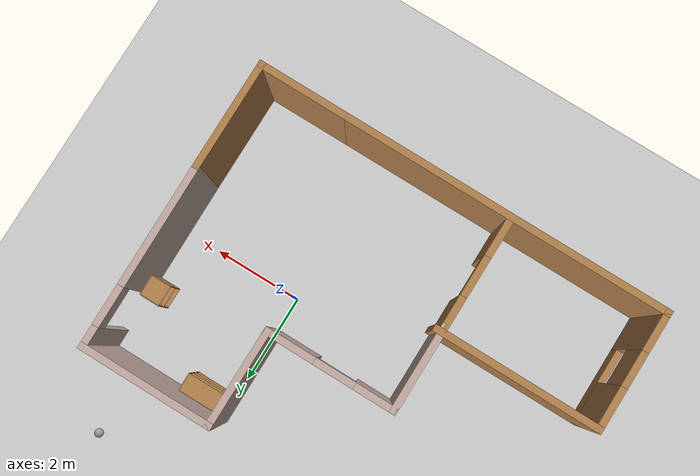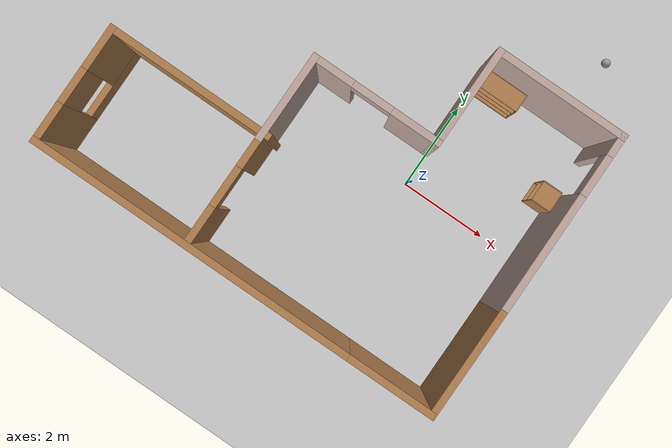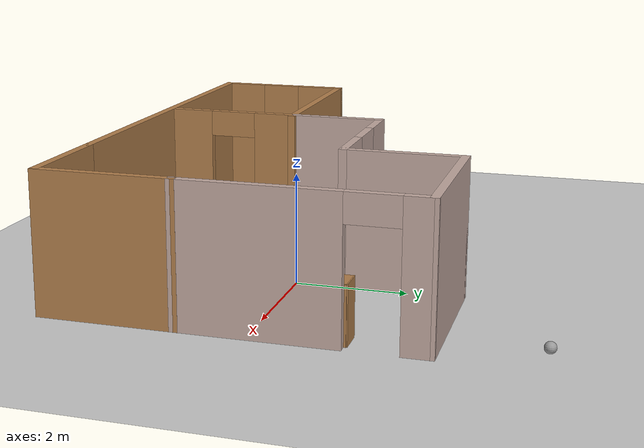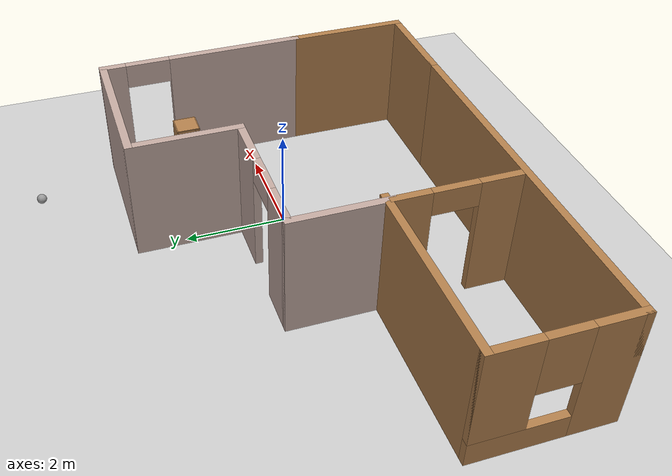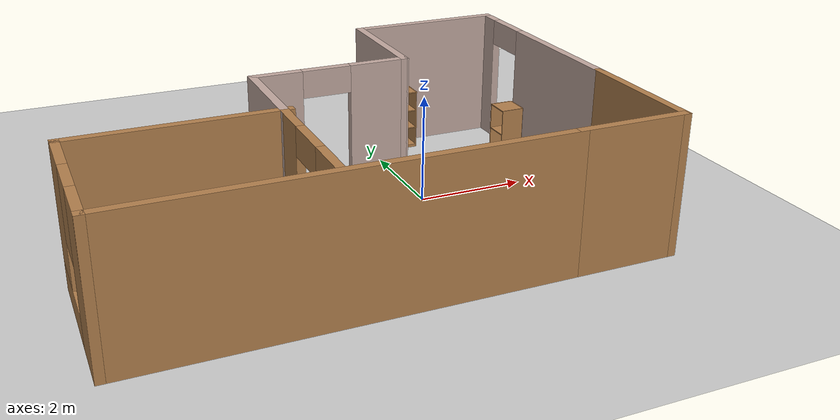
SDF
<sdf version="1.6">
 <world name="default">
  <light name="sun" type="directional">
   <pose>0 0 10 0 -0 0</pose>
   <diffuse>0.8 0.8 0.8 1</diffuse>
   <specular>0.2 0.2 0.2 1</specular>
   <attenuation>
    <range>1000</range>
    <constant>0.9</constant>
    <linear>0.01</linear>
    <quadratic>0.001</quadratic>
   </attenuation>
   <direction>-0.5 0.1 -0.9</direction>
  </light>
  <model name="ground_plane">
   <static>1</static>
   <link name="link">
    <collision name="collision">
     <geometry><plane><normal>0 0 1</normal><size>100 100</size></plane></geometry>
     <surface>
      <contact><collide_bitmask>65535</collide_bitmask></contact>
      <friction><ode><mu>100</mu><mu2>50</mu2></ode></friction>
     </surface>
    </collision>
    <visual name="visual">
     <cast_shadows>0</cast_shadows>
     <geometry><plane><normal>0 0 1</normal><size>100 100</size></plane></geometry>
     <material>
      <script><uri>file://media/materials/scripts/gazebo.material</uri><name>Gazebo/Grey</name></script>
     </material>
    </visual>
   </link>
  </model>
  <gravity>0 0 -9.8</gravity>
  <magnetic_field>6e-06 2.3e-05 -4.2e-05</magnetic_field>
  <atmosphere type="adiabatic"/>
  <physics name="default_physics" default="0" type="ode">
   <max_step_size>0.001</max_step_size>
   <real_time_factor>1</real_time_factor>
   <real_time_update_rate>1000</real_time_update_rate>
  </physics>
  <scene><ambient>0.4 0.4 0.4 1</ambient><background>0.7 0.7 0.7 1</background><shadows>1</shadows></scene>
  <spherical_coordinates>
   <surface_model>EARTH_WGS84</surface_model>
   <latitude_deg>0</latitude_deg>
   <longitude_deg>0</longitude_deg>
   <elevation>0</elevation>
   <heading_deg>0</heading_deg>
  </spherical_coordinates>
  <model name="Building">
   <pose>-1.77386 -0.295904 0 0 -0 0</pose>
   <link name="Wall_0">
    <collision name="Wall_0_Collision">
     <geometry><box><size>2 0.15 2.5</size></box></geometry>
     <pose>0 0 1.25 0 -0 0</pose>
    </collision>
    <visual name="Wall_0_Visual">
     <pose>0 0 1.25 0 -0 0</pose>
     <geometry><box><size>2 0.15 2.5</size></box></geometry>
     <material>
      <script><uri>file://media/materials/scripts/gazebo.material</uri><name>Gazebo/Grey</name></script>
      <ambient>0.760784 0.662745 0.627451 1</ambient>
     </material>
     <meta><layer>0</layer></meta>
    </visual>
    <pose>-1.11549 0.1998 0 0 -0 1.5708</pose>
   </link>
   <link name="Wall_1">
    <pose>0.309514 1.1248 0 0 -0 0</pose>
    <visual name="Wall_1_Visual_0">
     <pose>-1.01751 0 1.25 0 -0 0</pose>
     <geometry><box><size>0.964984 0.15 2.5</size></box></geometry>
     <material>
      <script><uri>file://media/materials/scripts/gazebo.material</uri><name>Gazebo/Grey</name></script>
      <ambient>0.760784 0.662745 0.627451 1</ambient>
     </material>
     <meta><layer>0</layer></meta>
    </visual>
    <collision name="Wall_1_Collision_0">
     <geometry><box><size>0.964984 0.15 2.5</size></box></geometry>
     <pose>-1.01751 0 1.25 0 -0 0</pose>
    </collision>
    <visual name="Wall_1_Visual_1">
     <pose>0.932492 0 1.25 0 -0 0</pose>
     <geometry><box><size>1.13502 0.15 2.5</size></box></geometry>
     <material>
      <script><uri>file://media/materials/scripts/gazebo.material</uri><name>Gazebo/Grey</name></script>
      <ambient>0.760784 0.662745 0.627451 1</ambient>
     </material>
     <meta><layer>0</layer></meta>
    </visual>
    <collision name="Wall_1_Collision_1">
     <geometry><box><size>1.13502 0.15 2.5</size></box></geometry>
     <pose>0.932492 0 1.25 0 -0 0</pose>
    </collision>
    <visual name="Wall_1_Visual_2">
     <pose>-0.085016 0 2.25 0 -0 0</pose>
     <geometry><box><size>0.9 0.15 0.5</size></box></geometry>
     <material>
      <script><uri>file://media/materials/scripts/gazebo.material</uri><name>Gazebo/Grey</name></script>
      <ambient>0.760784 0.662745 0.627451 1</ambient>
     </material>
     <meta><layer>0</layer></meta>
    </visual>
    <collision name="Wall_1_Collision_2">
     <geometry><box><size>0.9 0.15 0.5</size></box></geometry>
     <pose>-0.085016 0 2.25 0 -0 0</pose>
    </collision>
   </link>
   <link name="Wall_13">
    <pose>-1.11549 -1.9002 0 0 0 -1.5708</pose>
    <visual name="Wall_13_Visual_0">
     <pose>-0.861921 0 1.25 0 -0 0</pose>
     <geometry><box><size>0.776158 0.15 2.5</size></box></geometry>
     <material>
      <script><uri>file://media/materials/scripts/gazebo.material</uri><name>Gazebo/Wood</name></script>
      <ambient>1 1 1 1</ambient>
     </material>
     <meta><layer>0</layer></meta>
    </visual>
    <collision name="Wall_13_Collision_0">
     <geometry><box><size>0.776158 0.15 2.5</size></box></geometry>
     <pose>-0.861921 0 1.25 0 -0 0</pose>
    </collision>
    <visual name="Wall_13_Visual_1">
     <pose>0.838079 0 1.25 0 -0 0</pose>
     <geometry><box><size>0.823842 0.15 2.5</size></box></geometry>
     <material>
      <script><uri>file://media/materials/scripts/gazebo.material</uri><name>Gazebo/Wood</name></script>
      <ambient>1 1 1 1</ambient>
     </material>
     <meta><layer>0</layer></meta>
    </visual>
    <collision name="Wall_13_Collision_1">
     <geometry><box><size>0.823842 0.15 2.5</size></box></geometry>
     <pose>0.838079 0 1.25 0 -0 0</pose>
    </collision>
    <visual name="Wall_13_Visual_2">
     <pose>-0.023842 0 2.25 0 -0 0</pose>
     <geometry><box><size>0.9 0.15 0.5</size></box></geometry>
     <material>
      <script><uri>file://media/materials/scripts/gazebo.material</uri><name>Gazebo/Wood</name></script>
      <ambient>1 1 1 1</ambient>
     </material>
     <meta><layer>0</layer></meta>
    </visual>
    <collision name="Wall_13_Collision_2">
     <geometry><box><size>0.9 0.15 0.5</size></box></geometry>
     <pose>-0.023842 0 2.25 0 -0 0</pose>
    </collision>
   </link>
   <link name="Wall_15">
    <collision name="Wall_15_Collision">
     <geometry><box><size>2 0.15 2.5</size></box></geometry>
     <pose>0 0 1.25 0 -0 0</pose>
    </collision>
    <visual name="Wall_15_Visual">
     <pose>0 0 1.25 0 -0 0</pose>
     <geometry><box><size>2 0.15 2.5</size></box></geometry>
     <material>
      <script><uri>file://media/materials/scripts/gazebo.material</uri><name>Gazebo/Wood</name></script>
      <ambient>1 1 1 1</ambient>
     </material>
     <meta><layer>0</layer></meta>
    </visual>
    <pose>3.65951 -3.2252 0 0 -0 0</pose>
   </link>
   <link name="Wall_17">
    <collision name="Wall_17_Collision">
     <geometry><box><size>2.5002 0.15 2.5</size></box></geometry>
     <pose>0 0 1.25 0 -0 0</pose>
    </collision>
    <visual name="Wall_17_Visual">
     <pose>0 0 1.25 0 -0 0</pose>
     <geometry><box><size>2.5002 0.15 2.5</size></box></geometry>
     <material>
      <script><uri>file://media/materials/scripts/gazebo.material</uri><name>Gazebo/Wood</name></script>
      <ambient>1 1 1 1</ambient>
     </material>
     <meta><layer>0</layer></meta>
    </visual>
    <pose>4.61493 -2.0502 0 0 0 -1.5708</pose>
   </link>
   <link name="Wall_2">
    <collision name="Wall_2_Collision">
     <geometry><box><size>2.25 0.15 2.5</size></box></geometry>
     <pose>0 0 1.25 0 -0 0</pose>
    </collision>
    <visual name="Wall_2_Visual">
     <pose>0 0 1.25 0 -0 0</pose>
     <geometry><box><size>2.25 0.15 2.5</size></box></geometry>
     <material>
      <script><uri>file://media/materials/scripts/gazebo.material</uri><name>Gazebo/Grey</name></script>
      <ambient>0.760784 0.662745 0.627451 1</ambient>
     </material>
     <meta><layer>0</layer></meta>
    </visual>
    <pose>1.73451 2.1748 0 0 -0 1.5708</pose>
   </link>
   <link name="Wall_3">
    <collision name="Wall_3_Collision">
     <geometry><box><size>3 0.15 2.5</size></box></geometry>
     <pose>0 0 1.25 0 -0 0</pose>
    </collision>
    <visual name="Wall_3_Visual">
     <pose>0 0 1.25 0 -0 0</pose>
     <geometry><box><size>3 0.15 2.5</size></box></geometry>
     <material>
      <script><uri>file://media/materials/scripts/gazebo.material</uri><name>Gazebo/Grey</name></script>
      <ambient>0.760784 0.662745 0.627451 1</ambient>
     </material>
     <meta><layer>0</layer></meta>
    </visual>
    <pose>3.15951 3.2248 0 0 -0 0</pose>
   </link>
   <link name="Wall_4">
    <pose>4.59972 1.1748 0 0 0 -1.56338</pose>
    <visual name="Wall_4_Visual_0">
     <pose>-1.8581 0 1.25 0 -0 0</pose>
     <geometry><box><size>0.533801 0.15 2.5</size></box></geometry>
     <material>
      <script><uri>file://media/materials/scripts/gazebo.material</uri><name>Gazebo/Grey</name></script>
      <ambient>0.760784 0.662745 0.627451 1</ambient>
     </material>
     <meta><layer>0</layer></meta>
    </visual>
    <collision name="Wall_4_Collision_0">
     <geometry><box><size>0.533801 0.15 2.5</size></box></geometry>
     <pose>-1.8581 0 1.25 0 -0 0</pose>
    </collision>
    <visual name="Wall_4_Visual_1">
     <pose>0.716901 0 1.25 0 -0 0</pose>
     <geometry><box><size>2.8162 0.15 2.5</size></box></geometry>
     <material>
      <script><uri>file://media/materials/scripts/gazebo.material</uri><name>Gazebo/Grey</name></script>
      <ambient>0.760784 0.662745 0.627451 1</ambient>
     </material>
     <meta><layer>0</layer></meta>
    </visual>
    <collision name="Wall_4_Collision_1">
     <geometry><box><size>2.8162 0.15 2.5</size></box></geometry>
     <pose>0.716901 0 1.25 0 -0 0</pose>
    </collision>
    <visual name="Wall_4_Visual_2">
     <pose>-1.1412 0 2.25 0 -0 0</pose>
     <geometry><box><size>0.9 0.15 0.5</size></box></geometry>
     <material>
      <script><uri>file://media/materials/scripts/gazebo.material</uri><name>Gazebo/Grey</name></script>
      <ambient>0.760784 0.662745 0.627451 1</ambient>
     </material>
     <meta><layer>0</layer></meta>
    </visual>
    <collision name="Wall_4_Collision_2">
     <geometry><box><size>0.9 0.15 0.5</size></box></geometry>
     <pose>-1.1412 0 2.25 0 -0 0</pose>
    </collision>
   </link>
   <link name="Wall_7">
    <collision name="Wall_7_Collision">
     <geometry><box><size>7.5 0.15 2.5</size></box></geometry>
     <pose>0 0 1.25 0 -0 0</pose>
    </collision>
    <visual name="Wall_7_Visual">
     <pose>0 0 1.25 0 -0 0</pose>
     <geometry><box><size>7.5 0.15 2.5</size></box></geometry>
     <material>
      <script><uri>file://media/materials/scripts/gazebo.material</uri><name>Gazebo/Wood</name></script>
      <ambient>1 1 1 1</ambient>
     </material>
     <meta><layer>0</layer></meta>
    </visual>
    <pose>-0.940485 -3.2252 0 0 -0 3.14159</pose>
   </link>
   <link name="Wall_8">
    <pose>-4.61549 -1.9252 0 0 -0 1.5708</pose>
    <visual name="Wall_8_Visual_0">
     <pose>-0.899908 0 1.25 0 -0 0</pose>
     <geometry><box><size>0.950184 0.15 2.5</size></box></geometry>
     <material>
      <script><uri>file://media/materials/scripts/gazebo.material</uri><name>Gazebo/Wood</name></script>
      <ambient>1 1 1 1</ambient>
     </material>
     <meta><layer>0</layer></meta>
    </visual>
    <collision name="Wall_8_Collision_0">
     <geometry><box><size>0.950184 0.15 2.5</size></box></geometry>
     <pose>-0.899908 0 1.25 0 -0 0</pose>
    </collision>
    <visual name="Wall_8_Visual_1">
     <pose>0.475092 0 0.25 0 -0 0</pose>
     <geometry><box><size>1.79982 0.15 0.5</size></box></geometry>
     <material>
      <script><uri>file://media/materials/scripts/gazebo.material</uri><name>Gazebo/Wood</name></script>
      <ambient>1 1 1 1</ambient>
     </material>
     <meta><layer>0</layer></meta>
    </visual>
    <collision name="Wall_8_Collision_1">
     <geometry><box><size>1.79982 0.15 0.5</size></box></geometry>
     <pose>0.475092 0 0.25 0 -0 0</pose>
    </collision>
    <visual name="Wall_8_Visual_2">
     <pose>0.875092 0 1.5 0 -0 0</pose>
     <geometry><box><size>0.999816 0.15 2</size></box></geometry>
     <material>
      <script><uri>file://media/materials/scripts/gazebo.material</uri><name>Gazebo/Wood</name></script>
      <ambient>1 1 1 1</ambient>
     </material>
     <meta><layer>0</layer></meta>
    </visual>
    <collision name="Wall_8_Collision_2">
     <geometry><box><size>0.999816 0.15 2</size></box></geometry>
     <pose>0.875092 0 1.5 0 -0 0</pose>
    </collision>
    <visual name="Wall_8_Visual_3">
     <pose>-0.024816 0 1.9 0 -0 0</pose>
     <geometry><box><size>0.8 0.15 1.2</size></box></geometry>
     <material>
      <script><uri>file://media/materials/scripts/gazebo.material</uri><name>Gazebo/Wood</name></script>
      <ambient>1 1 1 1</ambient>
     </material>
     <meta><layer>0</layer></meta>
    </visual>
    <collision name="Wall_8_Collision_3">
     <geometry><box><size>0.8 0.15 1.2</size></box></geometry>
     <pose>-0.024816 0 1.9 0 -0 0</pose>
    </collision>
   </link>
   <link name="Wall_9">
    <collision name="Wall_9_Collision">
     <geometry><box><size>3.75 0.15 2.5</size></box></geometry>
     <pose>0 0 1.25 0 -0 0</pose>
    </collision>
    <visual name="Wall_9_Visual">
     <pose>0 0 1.25 0 -0 0</pose>
     <geometry><box><size>3.75 0.15 2.5</size></box></geometry>
     <material>
      <script><uri>file://media/materials/scripts/gazebo.material</uri><name>Gazebo/Wood</name></script>
      <ambient>1 1 1 1</ambient>
     </material>
     <meta><layer>0</layer></meta>
    </visual>
    <pose>-2.81548 -0.6252 0 0 -0 0</pose>
   </link>
   <static>1</static>
  </model>
  <model name="cabinet">
   <static>1</static>
   <link name="cabinet_bottom_plate">
    <inertial>
     <pose>0 0 -1 0 -0 0</pose>
     <inertia><ixx>2.05</ixx><ixy>0</ixy><ixz>0</ixz><iyy>2.05</iyy><iyz>0</iyz><izz>2.05</izz></inertia>
     <mass>25</mass>
    </inertial>
    <collision name="cabinet_bottom_plate_geom">
     <pose>0 0 0.01 0 -0 0</pose>
     <geometry><box><size>0.45 0.45 0.02</size></box></geometry>
    </collision>
    <visual name="cabinet_bottom_plate_geom_visual">
     <pose>0 0 0.01 0 -0 0</pose>
     <geometry><box><size>0.45 0.45 0.02</size></box></geometry>
     <material>
      <script><uri>file://media/materials/scripts/gazebo.material</uri><name>Gazebo/Wood</name></script>
     </material>
    </visual>
    <collision name="cabinet_bottom_plate_geom_cabinet_back_plate">
     <pose>0.235 0 0.51 0 -0 0</pose>
     <geometry><box><size>0.02 0.45 1.02</size></box></geometry>
    </collision>
    <visual name="cabinet_bottom_plate_geom_cabinet_back_plate_visual">
     <pose>0.235 0 0.51 0 -0 0</pose>
     <geometry><box><size>0.02 0.45 1.02</size></box></geometry>
     <material>
      <script><uri>file://media/materials/scripts/gazebo.material</uri><name>Gazebo/Wood</name></script>
     </material>
    </visual>
    <collision name="cabinet_bottom_plate_geom_cabinet_left_plate">
     <pose>0 0.235 0.51 0 -0 0</pose>
     <geometry><box><size>0.45 0.02 1.02</size></box></geometry>
    </collision>
    <visual name="cabinet_bottom_plate_geom_cabinet_left_plate_visual">
     <pose>0 0.235 0.51 0 -0 0</pose>
     <geometry><box><size>0.45 0.02 1.02</size></box></geometry>
     <material>
      <script><uri>file://media/materials/scripts/gazebo.material</uri><name>Gazebo/Wood</name></script>
     </material>
    </visual>
    <collision name="cabinet_bottom_plate_geom_cabinet_middle_plate">
     <pose>0 0 0.51 0 -0 0</pose>
     <geometry><box><size>0.45 0.45 0.02</size></box></geometry>
    </collision>
    <visual name="cabinet_bottom_plate_geom_cabinet_middle_plate_visual">
     <pose>0 0 0.51 0 -0 0</pose>
     <geometry><box><size>0.45 0.45 0.02</size></box></geometry>
     <material>
      <script><uri>file://media/materials/scripts/gazebo.material</uri><name>Gazebo/Wood</name></script>
     </material>
    </visual>
    <collision name="cabinet_bottom_plate_geom_cabinet_right_plate">
     <pose>0 -0.235 0.51 0 -0 0</pose>
     <geometry><box><size>0.45 0.02 1.02</size></box></geometry>
    </collision>
    <visual name="cabinet_bottom_plate_geom_cabinet_right_plate_visual">
     <pose>0 -0.235 0.51 0 -0 0</pose>
     <geometry><box><size>0.45 0.02 1.02</size></box></geometry>
     <material>
      <script><uri>file://media/materials/scripts/gazebo.material</uri><name>Gazebo/Wood</name></script>
     </material>
    </visual>
    <collision name="cabinet_bottom_plate_geom_cabinet_top_plate">
     <pose>0 0 1.01 0 -0 0</pose>
     <geometry><box><size>0.45 0.45 0.02</size></box></geometry>
    </collision>
    <visual name="cabinet_bottom_plate_geom_cabinet_top_plate_visual">
     <pose>0 0 1.01 0 -0 0</pose>
     <geometry><box><size>0.45 0.45 0.02</size></box></geometry>
     <material>
      <script><uri>file://media/materials/scripts/gazebo.material</uri><name>Gazebo/Wood</name></script>
     </material>
    </visual>
   </link>
   <pose>2.50458 1.38224 0 0 -0 0</pose>
  </model>
  <model name="bookshelf">
   <static>1</static>
   <link name="link">
    <inertial><mass>1</mass></inertial>
    <collision name="back">
     <pose>0 0.005 0.6 0 -0 0</pose>
     <geometry><box><size>0.9 0.01 1.2</size></box></geometry>
    </collision>
    <visual name="visual1">
     <pose>0 0.005 0.6 0 -0 0</pose>
     <geometry><box><size>0.9 0.01 1.2</size></box></geometry>
     <material>
      <script><uri>file://media/materials/scripts/gazebo.material</uri><name>Gazebo/Wood</name></script>
     </material>
    </visual>
    <collision name="left_side">
     <pose>0.45 -0.195 0.6 0 -0 0</pose>
     <geometry><box><size>0.02 0.4 1.2</size></box></geometry>
    </collision>
    <visual name="visual2">
     <pose>0.45 -0.195 0.6 0 -0 0</pose>
     <geometry><box><size>0.02 0.4 1.2</size></box></geometry>
     <material>
      <script><uri>file://media/materials/scripts/gazebo.material</uri><name>Gazebo/Wood</name></script>
     </material>
    </visual>
    <collision name="right_side">
     <pose>-0.45 -0.195 0.6 0 -0 0</pose>
     <geometry><box><size>0.02 0.4 1.2</size></box></geometry>
    </collision>
    <visual name="visual3">
     <pose>-0.45 -0.195 0.6 0 -0 0</pose>
     <geometry><box><size>0.02 0.4 1.2</size></box></geometry>
     <material>
      <script><uri>file://media/materials/scripts/gazebo.material</uri><name>Gazebo/Wood</name></script>
     </material>
    </visual>
    <collision name="bottom">
     <pose>0 -0.195 0.03 0 -0 0</pose>
     <geometry><box><size>0.88 0.4 0.06</size></box></geometry>
    </collision>
    <visual name="visual4">
     <pose>0 -0.195 0.03 0 -0 0</pose>
     <geometry><box><size>0.88 0.4 0.06</size></box></geometry>
     <material>
      <script><uri>file://media/materials/scripts/gazebo.material</uri><name>Gazebo/Wood</name></script>
     </material>
    </visual>
    <collision name="top">
     <pose>0 -0.195 1.19 0 -0 0</pose>
     <geometry><box><size>0.88 0.4 0.02</size></box></geometry>
    </collision>
    <visual name="visual5">
     <pose>0 -0.195 1.19 0 -0 0</pose>
     <geometry><box><size>0.88 0.4 0.02</size></box></geometry>
     <material>
      <script><uri>file://media/materials/scripts/gazebo.material</uri><name>Gazebo/Wood</name></script>
     </material>
    </visual>
    <collision name="low_shelf">
     <pose>0 -0.195 0.43 0 -0 0</pose>
     <geometry><box><size>0.88 0.4 0.02</size></box></geometry>
    </collision>
    <visual name="visual6">
     <pose>0 -0.195 0.43 0 -0 0</pose>
     <geometry><box><size>0.88 0.4 0.02</size></box></geometry>
     <material>
      <script><uri>file://media/materials/scripts/gazebo.material</uri><name>Gazebo/Wood</name></script>
     </material>
    </visual>
    <collision name="high_shelf">
     <pose>0 -0.195 0.8 0 -0 0</pose>
     <geometry><box><size>0.88 0.4 0.02</size></box></geometry>
    </collision>
    <visual name="visual7">
     <pose>0 -0.195 0.8 0 -0 0</pose>
     <geometry><box><size>0.88 0.4 0.02</size></box></geometry>
     <material>
      <script><uri>file://media/materials/scripts/gazebo.material</uri><name>Gazebo/Wood</name></script>
     </material>
    </visual>
   </link>
   <pose>0.5252 2.81688 0 0 -0 0</pose>
  </model>
  <model name="my_ball">
   <link name="link_0">
    <inertial>
     <mass>1</mass>
     <inertia><ixx>0.1</ixx><ixy>0</ixy><ixz>0</ixz><iyy>0.1</iyy><iyz>0</iyz><izz>0.1</izz></inertia>
    </inertial>
    <visual name="visual">
     <geometry><sphere><radius>0.1</radius></sphere></geometry>
     <material>
      <lighting>1</lighting>
      <script><uri>file://media/materials/scripts/gazebo.material</uri><name>Gazebo/Grey</name></script>
      <shader type="pixel"><normal_map>__default__</normal_map></shader>
      <ambient>1 1 1 1</ambient>
      <diffuse>1 1 1 1</diffuse>
      <specular>1 1 1 1</specular>
      <emissive>1 1 1 1</emissive>
     </material>
    </visual>
    <collision name="collision">
     <geometry><sphere><radius>0.1</radius></sphere></geometry>
     <surface>
      <friction>
       <ode><mu>1</mu><mu2>1</mu2><fdir1>0 0 0</fdir1><slip1>0</slip1><slip2>0</slip2></ode>
       <torsional>
        <coefficient>1</coefficient>
        <patch_radius>0</patch_radius>
        <surface_radius>0</surface_radius>
        <use_patch_radius>1</use_patch_radius>
        <ode><slip>0</slip></ode>
       </torsional>
      </friction>
      <bounce><restitution_coefficient>0</restitution_coefficient><threshold>1e+06</threshold></bounce>
      <contact>
       <collide_without_contact>0</collide_without_contact>
       <collide_without_contact_bitmask>1</collide_without_contact_bitmask>
       <collide_bitmask>1</collide_bitmask>
       <ode>
        <soft_cfm>0</soft_cfm>
        <soft_erp>0.2</soft_erp>
        <kp>1e+13</kp>
        <kd>1</kd>
        <max_vel>0.01</max_vel>
        <min_depth>0</min_depth>
       </ode>
       <bullet>
        <split_impulse>1</split_impulse>
        <split_impulse_penetration_threshold>-0.01</split_impulse_penetration_threshold>
        <soft_cfm>0</soft_cfm>
        <soft_erp>0.2</soft_erp>
        <kp>1e+13</kp>
        <kd>1</kd>
       </bullet>
      </contact>
     </surface>
    </collision>
   </link>
   <static>0</static>
   <pose>2.07477 4.6181 0.1 0 -0 0</pose>
  </model>
 </world>
</sdf>
